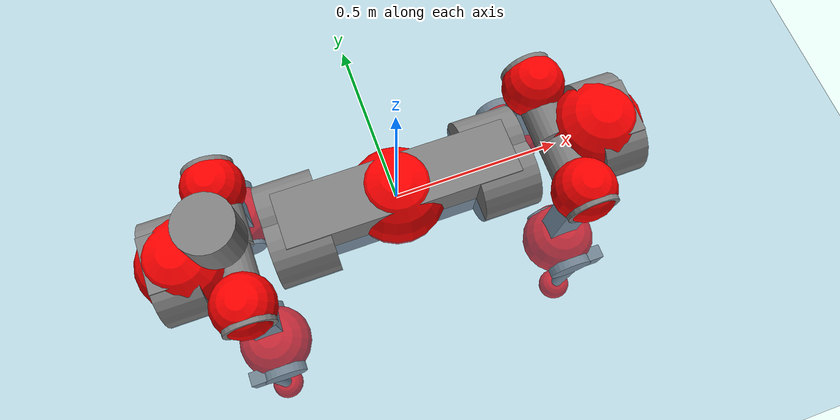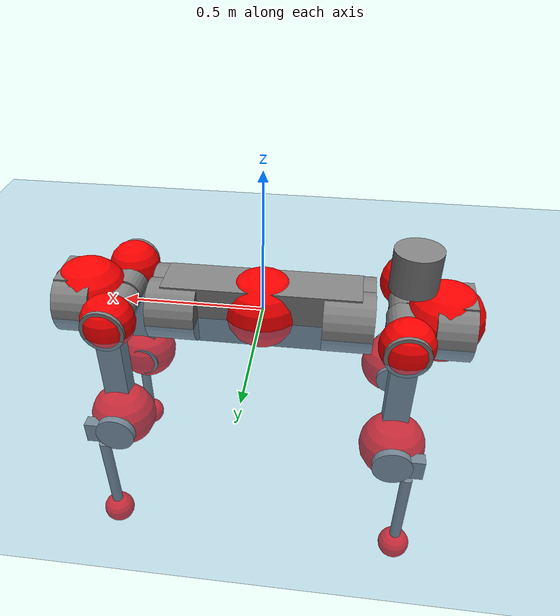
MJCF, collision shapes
<mujoco model="anymal_c">
  <compiler angle="radian" assetdir="assets" balanceinertia="true" inertiafromgeom="false"/>

  <option timestep="0.005" density="1.2" viscosity="2e-05"/>

  <size nkey="1"/>

  <visual>
    <quality shadowsize="8192"/>
    <map shadowclip="0.5"/>
  </visual>

  <default>
    <default class="/">
      <material specular="0" shininess="0.25"/>
      <geom contype="0" conaffinity="0" group="1" solref="-1000 -80"/>
      <site size="0.01 0.005 0.005" group="5"/>
      <general forcelimited="true" forcerange="-80 80" biastype="affine" gainprm="80" biasprm="0 -80 -2"/>
      <default class="anymal_c">
        <joint armature="0.01" damping="0.01" frictionloss="0.1"/>
        <default class="visual">
          <geom type="mesh" group="2"/>
          <default class="visual_zflip"/>
        </default>
        <default class="collision">
          <geom type="cylinder" group="3"/>
          <default class="foot">
            <geom size="0.03 0 0" type="sphere" condim="6" priority="1" friction="0.8 0.02 0.01" solimp="0.015 1 0.03"/>
          </default>
        </default>
      </default>
      <default class="reward_collision_sphere">
        <geom group="5" rgba="1 0 0 1"/>
      </default>
    </default>
  </default>

  <asset>
    <texture type="skybox" colorspace="auto" name="//unnamed_texture_0" builtin="gradient" rgb1="0.95 0.95 0.95" rgb2="0.95 0.95 0.95" width="100" height="600"/>
    <texture type="2d" colorspace="auto" name="texplane" builtin="checker" rgb1="0.345 0.575 0.748" rgb2="0.345 0.575 0.748" markrgb="1 1 1" width="512" height="512"/>
    <texture type="2d" colorspace="linear" name="base" file="base.png"/>
    <texture type="2d" colorspace="linear" name="top_shell" file="top_shell.png"/>
    <texture type="2d" colorspace="linear" name="bottom_shell" file="bottom_shell.png"/>
    <texture type="2d" colorspace="linear" name="remote" file="remote.png"/>
    <texture type="2d" colorspace="linear" name="hatch" file="hatch.png"/>
    <texture type="2d" colorspace="linear" name="handle" file="handle.png"/>
    <texture type="2d" colorspace="linear" name="face" file="face.png"/>
    <texture type="2d" colorspace="linear" name="battery" file="battery.png"/>
    <texture type="2d" colorspace="linear" name="lidar_cage" file="lidar_cage.png"/>
    <texture type="2d" colorspace="linear" name="depth_camera" file="depth_camera.png"/>
    <texture type="2d" colorspace="linear" name="wide_angle_camera" file="wide_angle_camera.png"/>
    <texture type="2d" colorspace="linear" name="lidar" file="lidar.png"/>
    <texture type="2d" colorspace="linear" name="drive" file="drive.png"/>
    <texture type="2d" colorspace="linear" name="hip_l" file="hip_l.png"/>
    <texture type="2d" colorspace="linear" name="shank_l" file="shank_l.png"/>
    <texture type="2d" colorspace="linear" name="foot" file="foot.png"/>
    <texture type="2d" colorspace="linear" name="thigh" file="thigh.png"/>
    <texture type="2d" colorspace="linear" name="shank_r" file="shank_r.png"/>
    <texture type="2d" colorspace="linear" name="hip_r" file="hip_r.png"/>
    <material name="MatPlane" class="/" texture="texplane" texuniform="true" texrepeat="2 2" specular="0.9" shininess="0.5"/>
    <material name="black_plastic" class="/" rgba="0.007 0.007 0.007 1"/>
    <material name="green" class="/" rgba="0.052 0.178 0.033 1"/>
    <material name="red" class="/" rgba="0.178 0.006 0.005 1"/>
    <material name="yellow" class="/" rgba="0.178 0.119 0.006 1"/>
    <material name="lwl" class="/" rgba="0.8 0.8 0.8 1"/>
    <material name="base" class="/" texture="base"/>
    <material name="top_shell" class="/" texture="top_shell"/>
    <material name="bottom_shell" class="/" texture="bottom_shell"/>
    <material name="hip_l" class="/" texture="hip_l"/>
    <material name="thigh" class="/" texture="thigh"/>
    <material name="shank_l" class="/" texture="shank_l"/>
    <material name="foot" class="/" texture="foot"/>
    <material name="hip_r" class="/" texture="hip_r"/>
    <material name="shank" class="/" texture="shank_r"/>
    <material name="hatch" class="/" texture="hatch"/>
    <material name="remote" class="/" texture="remote"/>
    <material name="handle" class="/" texture="handle"/>
    <material name="face" class="/" texture="face"/>
    <material name="depth_camera" class="/" texture="depth_camera"/>
    <material name="wide_angle_camera" class="/" texture="wide_angle_camera"/>
    <material name="battery" class="/" texture="battery"/>
    <material name="lidar_cage" class="/" texture="lidar_cage"/>
    <material name="lidar" class="/" texture="lidar"/>
    <material name="drive" class="/" texture="drive"/>
    <mesh name="base_0" class="/" file="base_0.obj"/>
    <mesh name="base_1" class="/" file="base_1.obj"/>
    <mesh name="base_2" class="/" file="base_2.obj"/>
    <mesh name="base_3" class="/" file="base_3.obj"/>
    <mesh name="base_4" class="/" file="base_4.obj"/>
    <mesh name="base_5" class="/" file="base_5.obj"/>
    <mesh name="top_shell" class="/" file="top_shell.obj"/>
    <mesh name="bottom_shell" class="/" file="bottom_shell.obj"/>
    <mesh name="remote" class="/" file="remote.obj"/>
    <mesh name="handle" class="/" file="handle.obj"/>
    <mesh name="face" class="/" file="face.obj"/>
    <mesh name="wide_angle_camera" class="/" file="wide_angle_camera.obj"/>
    <mesh name="depth_camera" class="/" file="depth_camera.obj"/>
    <mesh name="battery" class="/" file="battery.obj"/>
    <mesh name="lidar_cage" class="/" file="lidar_cage.obj"/>
    <mesh name="lidar" class="/" file="lidar.obj"/>
    <mesh name="drive" class="/" file="drive.obj"/>
    <mesh name="hip_l" class="/" file="hip_l.obj"/>
    <mesh name="thigh" class="/" file="thigh.obj"/>
    <mesh name="shank_l" class="/" file="shank_l.obj"/>
    <mesh name="foot" class="/" file="foot.obj"/>
    <mesh name="hip_r" class="/" file="hip_r.obj"/>
    <mesh name="hatch" class="/" file="hatch.obj"/>
    <mesh name="shank_r" class="/" file="shank_r.obj"/>
  </asset>

  <worldbody>
    <geom name="floor" class="/" size="100 100 0.125" type="plane" group="0" material="MatPlane"/>
    <light name="toplight_shadow" class="/" pos="0 0 5" dir="0.0990148 0.0990148 -0.990148" type="directional" ambient="0.04 0.04 0.04" diffuse="0.55 0.55 0.55" specular="0.12 0.12 0.12"/>
    <light name="toplight_fill" class="/" pos="0 0 5" dir="0.0990148 0.0990148 -0.990148" type="directional" castshadow="false" ambient="0.04 0.04 0.04" diffuse="0.3 0.3 0.3" specular="0.08 0.08 0.08"/>
    <body name="trunk" childclass="anymal_c" pos="0.00135538 -0.000388013 0.00615106" quat="1 -0.000306137 0.000452954 6.73962e-05">
      <inertial pos="0.0106957 0.00885954 0.069105" quat="0.504335 0.493574 0.505716 0.496269" mass="31.2335" diaginertia="2.77011 0.0963219 1.16138"/>
      <joint name="//unnamed_joint_0" type="free" armature="0" damping="0" frictionloss="0"/>
      <geom name="//unnamed_geom_1" class="visual" material="green" mesh="base_0"/>
      <geom name="//unnamed_geom_2" class="visual" material="yellow" mesh="base_1"/>
      <geom name="//unnamed_geom_3" class="visual" material="red" mesh="base_2"/>
      <geom name="//unnamed_geom_4" class="visual" material="black_plastic" mesh="base_3"/>
      <geom name="//unnamed_geom_5" class="visual" material="lwl" mesh="base_4"/>
      <geom name="//unnamed_geom_6" class="visual" material="base" mesh="base_5"/>
      <geom name="trunk_1" class="collision" size="0.341975 0.0825457 0.10613" type="box"/>
      <geom name="trunk_2" class="collision" size="0.10613 0.0854937" pos="0.302161 0.0494389 0" quat="0.707107 0 0.707107 0"/>
      <geom name="trunk_3" class="collision" size="0.10613 0.0854937" pos="-0.302161 0.0494389 0" quat="0.707107 0 0.707107 0"/>
      <geom name="trunk_4" class="collision" size="0.10613 0.0854937" pos="0.302161 -0.0494389 0" quat="0.707107 0 0.707107 0"/>
      <geom name="trunk_5" class="collision" size="0.10613 0.0854937" pos="-0.302161 -0.0494389 0" quat="0.707107 0 0.707107 0"/>
      <geom name="//unnamed_geom_12" class="visual" material="top_shell" mesh="top_shell"/>
      <geom name="//unnamed_geom_13" class="visual" material="bottom_shell" mesh="bottom_shell"/>
      <geom name="//unnamed_geom_14" class="visual" material="remote" mesh="remote"/>
      <geom name="//unnamed_geom_15" class="visual" material="handle" mesh="handle"/>
      <geom name="//unnamed_geom_16" class="visual" pos="0.575842 0 0" quat="1 0 0 0" material="face" mesh="face"/>
      <geom name="trunk_6" class="collision" size="0.0648573 0.0825457 0.10613" pos="0.65225 0 0" type="box"/>
      <geom name="//unnamed_geom_18" class="collision" size="0.10613 0.0648573" pos="0.65225 0.0494389 0" quat="0.707107 0 0.707107 0"/>
      <geom name="//unnamed_geom_19" class="collision" size="0.10613 0.0648573" pos="0.65225 -0.0494389 0" quat="0.707107 0 0.707107 0"/>
      <geom name="//unnamed_geom_20" class="visual" pos="0.641347 0 -0.0425131" quat="0.965926 0 0.258819 0" material="depth_camera" mesh="depth_camera"/>
      <geom name="//unnamed_geom_21" class="visual" pos="0.712682 0 0.0215891" material="wide_angle_camera" mesh="wide_angle_camera"/>
      <geom name="//unnamed_geom_22" class="visual_zflip" pos="-0.575842 0 0" quat="0 0 0 1" material="face" mesh="face"/>
      <geom name="trunk_7" class="collision" size="0.0648573 0.0825457 0.10613" pos="-0.65225 0 0" quat="0 0 0 1" type="box"/>
      <geom name="//unnamed_geom_24" class="collision" size="0.10613 0.0648573" pos="-0.65225 -0.0494389 0" quat="0 -0.707107 0 0.707107"/>
      <geom name="//unnamed_geom_25" class="collision" size="0.10613 0.0648573" pos="-0.65225 0.0494389 0" quat="0 -0.707107 0 0.707107"/>
      <geom name="//unnamed_geom_26" class="visual" pos="-0.641347 0 -0.0425131" quat="0 -0.258819 0 0.965926" material="depth_camera" mesh="depth_camera"/>
      <geom name="//unnamed_geom_27" class="visual_zflip" pos="-0.712682 0 0.0215891" quat="0 0 0 1" material="wide_angle_camera" mesh="wide_angle_camera"/>
      <geom name="//unnamed_geom_28" class="visual" material="battery" mesh="battery"/>
      <geom name="//unnamed_geom_29" class="visual" pos="0 0.0450415 0.0414925" quat="0.683013 -0.183013 0.183013 0.683013" material="depth_camera" mesh="depth_camera"/>
      <geom name="//unnamed_geom_30" class="visual" pos="0 -0.0450415 0.0414925" quat="0.683013 0.183013 0.183013 -0.683013" material="depth_camera" mesh="depth_camera"/>
      <geom name="//unnamed_geom_31" class="visual" pos="-0.505685 0 0.105999" quat="1 0 0 0" material="lidar_cage" mesh="lidar_cage"/>
      <geom name="trunk_8" class="collision" size="0.0825457 0.0707534" pos="-0.505685 0 0.192528"/>
      <geom name="//unnamed_geom_33" class="visual" pos="-0.505685 -0.000268322 0.205075" quat="0.707107 0 0 -0.707107" material="lidar" mesh="lidar"/>
      <geom name="//unnamed_geom_34" class="visual" pos="0.416634 0.0737135 -1.26941e-08" quat="0.258819 0.965926 0 0" material="drive" mesh="drive"/>
      <geom name="//unnamed_geom_35" class="visual" pos="0.416634 -0.0737135 1.26941e-08" quat="0.258819 -0.965926 0 0" material="drive" mesh="drive"/>
      <geom name="//unnamed_geom_36" class="visual" pos="-0.416634 0.0737135 1.26941e-08" quat="0 0 0.965926 -0.258819" material="drive" mesh="drive"/>
      <geom name="//unnamed_geom_37" class="visual" pos="-0.416634 -0.0737135 -1.26941e-08" quat="0 0 -0.965926 -0.258819" material="drive" mesh="drive"/>
      <geom name="//unnamed_geom_38" class="visual" pos="0.161152 0 0.105277" quat="1 0 0 0" material="hatch" mesh="hatch"/>
      <geom name="//unnamed_geom_39" class="reward_collision_sphere" size="0.141507"/>
      <geom name="//unnamed_geom_40" class="reward_collision_sphere" size="0.141507" pos="0.62516 0 0"/>
      <geom name="//unnamed_geom_41" class="reward_collision_sphere" size="0.141507" pos="-0.62516 0 0"/>
      <site name="imu" pos="0.400331 0.00213087 0.0228663" size="0.0117922"/>
      <camera name="track" pos="0 -1.41254 0" quat="0.707107 0.707107 0 0" mode="trackcom"/>
      <camera name="ego_camera" pos="0.62516 0 -0.0576863" quat="-0.5 -0.5 0.5 0.5"/>
      <body name="LF_HIP" pos="0.417614 0.0756613 -0.00149161" quat="0.259417 0.965764 -0.00126724 0.00126268">
        <inertial pos="0.0697153 -0.00699129 -0.0137973" quat="-0.106547 0.711655 -0.123955 0.68325" mass="4.97284" diaginertia="0.0332009 0.000827671 0.019626"/>
        <joint name="LF_HAA" pos="0 0 0" axis="0.999418 0.0221284 -0.0259706" stiffness="0.00437421" range="-0.752129 0.399374" armature="0.00589407" damping="0.0561764" frictionloss="0.11675"/>
        <geom name="//unnamed_geom_42" class="visual" pos="0 -0.000746739 0.000122651" quat="0.258819 -0.965926 0 0" material="hip_l" mesh="hip_l"/>
        <geom name="//unnamed_geom_43" class="visual" pos="0.0832158 -0.0921026 -0.0586185" quat="0.183013 -0.683013 0.683013 0.183013" material="drive" mesh="drive"/>
        <geom name="//unnamed_geom_44" class="collision" size="0.0589612 0.0825457" pos="0.0832157 -0.00844684 -0.0099581" quat="-0.353553 -0.612372 0.612372 -0.353553"/>
        <body name="LF_THIGH" pos="0.0844679 -0.0524426 -0.0591509" quat="0.183364 -0.683161 0.683032 0.182034">
          <inertial pos="0.0399872 -0.00107177 -0.363634" quat="0.993167 -0.000505546 -0.082756 0.0822852" mass="4.80333" diaginertia="0.178182 0.00537656 0.0265189"/>
          <joint name="LF_HFE" pos="0 0 0" axis="0.998537 0.041352 0.034828" range="-3.12775 3.14406" armature="0.0120018" damping="0.0143567" frictionloss="0.16967"/>
          <geom name="//unnamed_geom_45" class="visual" pos="0.0135885 2.14123e-05 0" quat="0.707107 0 0 -0.707107" material="thigh" mesh="thigh"/>
          <geom name="//unnamed_geom_46" class="collision" size="0.0766495 0.0471689" pos="0.0555698 0 0" quat="0.5 0.5 -0.5 -0.5"/>
          <geom name="//unnamed_geom_47" class="collision" size="0.0442209 0.0353767 0.166641" pos="0.0416773 0 -0.203797" quat="0.707107 0 0 -0.707107" type="box"/>
          <geom name="//unnamed_geom_48" class="visual" pos="0.139341 0 -0.411015" quat="1 0 0 0" material="drive" mesh="drive"/>
          <geom name="//unnamed_geom_49" class="collision" size="0.0589612 0.0825457" pos="0.0420941 0 -0.411015" quat="0.707107 0 0.707107 0"/>
          <geom name="//unnamed_geom_50" class="reward_collision_sphere" size="0.0943379" pos="0.0347311 0 0"/>
          <body name="LF_SHANK" pos="0.13158 0.00805068 -0.40011" quat="0.999993 0.00330493 0.00179111 0.000678317">
            <inertial pos="0.00819534 -0.0427305 -0.11555" quat="0.993248 -0.112868 -0.00363086 -0.0265633" mass="0.994872" diaginertia="0.0550953 0.00163422 0.00738781"/>
            <joint name="LF_KFE" pos="0 0 0" axis="0.999942 0.0008978 0.0107438" stiffness="0.00391642" range="-3.02584 3.08891" armature="0.00968238" damping="0.0463478" frictionloss="0.0863117"/>
            <geom name="//unnamed_geom_51" class="visual" pos="0.00443092 0.0236259 0" quat="0.707107 0 0 -0.707107" material="shank_l" mesh="shank_l"/>
            <geom name="LF_kfe_act" class="collision" size="0.0707534 0.0235845" pos="0.0277849 0 0" quat="0.5 0.5 -0.5 -0.5"/>
            <geom name="//unnamed_geom_53" class="collision" size="0.0678042 0.0397988 0.0224053" pos="0.0277849 -0.0406098 0" quat="0.5 0.5 -0.5 -0.5" type="box"/>
            <geom name="//unnamed_geom_54" class="visual" pos="0.0181286 -0.0545027 -0.487406" quat="0.382683 0 0 -0.92388" material="foot" mesh="foot"/>
            <geom name="LF_calf" class="collision" size="0.0206364 0.166568" pos="0.0181296 -0.0621164 -0.243703" quat="0.707107 0 0 -0.707107"/>
            <geom name="LF_foot" class="foot" size="0.0352134" pos="0.0181296 -0.0621164 -0.454957" quat="0.707107 0 0 -0.707107"/>
            <geom name="//unnamed_geom_57" class="reward_collision_sphere" size="0.117922" pos="-0.0694622 0 0"/>
            <geom name="//unnamed_geom_58" class="reward_collision_sphere" size="0.0589612" pos="0.0181296 -0.0621164 -0.454957"/>
            <site name="LF_foot" class="foot" pos="0.0181296 -0.0621164 -0.454957" quat="0.707107 0 0 -0.707107" size="0.0117922"/>
          </body>
        </body>
      </body>
      <body name="RF_HIP" pos="0.422262 -0.0742503 0.00114533" quat="0.259096 -0.965851 -0.000326182 -3.52294e-05">
        <inertial pos="0.0702375 0.00967983 -0.0105116" quat="0.12733 0.680271 0.126901 0.710574" mass="4.29841" diaginertia="0.0294415 0.000761224 0.0191427"/>
        <joint name="RF_HAA" pos="0 0 0" axis="0.999939 -0.00513226 0.00978806" stiffness="0.00685021" range="-0.305939 0.727228" armature="0.0165966" damping="0.00500193" frictionloss="0.170421"/>
        <geom name="//unnamed_geom_59" class="visual" pos="0 0.000746733 0.000122651" quat="0.258819 0.965926 0 0" material="hip_r" mesh="hip_r"/>
        <geom name="//unnamed_geom_60" class="visual" pos="0.0832157 0.0921026 -0.0586185" quat="0.183013 0.683013 0.683013 -0.183013" material="drive" mesh="drive"/>
        <geom name="//unnamed_geom_61" class="collision" size="0.0589612 0.0825457" pos="0.0832157 0.00844684 -0.0099581" quat="-0.353553 0.612372 0.612372 0.353553"/>
        <body name="RF_THIGH" pos="0.0864207 0.041667 -0.0567457" quat="0.183065 0.68296 0.683094 -0.182851">
          <inertial pos="0.04195 0.000704859 -0.355925" quat="0.991668 0.00577084 -0.051999 0.117715" mass="6.15495" diaginertia="0.173143 0.0053305 0.0271813"/>
          <joint name="RF_HFE" pos="0 0 0" axis="0.999377 0.0340038 -0.00942126" stiffness="0.00865044" range="-3.35541 3.02537" armature="0.0117337" damping="0.0419211" frictionloss="0.0474826"/>
          <geom name="//unnamed_geom_62" class="visual" pos="0.0135885 2.14123e-05 0" quat="0.707107 0 0 -0.707107" material="thigh" mesh="thigh"/>
          <geom name="//unnamed_geom_63" class="collision" size="0.0766495 0.0471689" pos="0.0555698 0 0" quat="0.5 0.5 0.5 0.5"/>
          <geom name="//unnamed_geom_64" class="collision" size="0.0442209 0.0353767 0.166641" pos="0.0416773 0 -0.203797" quat="0.707107 0 0 0.707107" type="box"/>
          <geom name="//unnamed_geom_65" class="visual" pos="0.139341 0 -0.411015" quat="1 0 0 0" material="drive" mesh="drive"/>
          <geom name="//unnamed_geom_66" class="collision" size="0.0589612 0.0825457" pos="0.0420941 0 -0.411015" quat="0.707107 0 0.707107 0"/>
          <geom name="//unnamed_geom_67" class="reward_collision_sphere" size="0.0943379" pos="0.0347311 0 0"/>
          <body name="RF_SHANK" pos="0.130671 0.00974147 -0.413584" quat="1 -0.000227103 -0.000705087 -0.000313354">
            <inertial pos="0.00645273 0.041626 -0.125922" quat="0.990504 0.130238 -0.00529677 0.0437362" mass="0.957235" diaginertia="0.0595511 0.00177556 0.00712373"/>
            <joint name="RF_KFE" pos="0 0 0" axis="0.999994 -0.00337486 -9.77651e-05" stiffness="0.00134364" range="-3.04166 3.03094" armature="0.012729" damping="0.0143506" frictionloss="0.178749"/>
            <geom name="//unnamed_geom_68" class="visual" pos="0.00443089 -0.0236258 0" quat="0.707107 0 0 0.707107" material="shank" mesh="shank_r"/>
            <geom name="RF_kfe_act" class="collision" size="0.0707534 0.0235845" pos="0.0277849 0 0" quat="0.5 0.5 0.5 0.5"/>
            <geom name="//unnamed_geom_70" class="collision" size="0.0678042 0.0397988 0.0224053" pos="0.0277849 0.0406098 0" quat="0.5 0.5 0.5 0.5" type="box"/>
            <geom name="//unnamed_geom_71" class="visual" pos="0.0181307 0.0545027 -0.487406" quat="0.382683 0 0 0.92388" material="foot" mesh="foot"/>
            <geom name="RF_calf" class="collision" size="0.0206364 0.166568" pos="0.0181296 0.0621164 -0.243703" quat="0.707107 0 0 0.707107"/>
            <geom name="RF_foot" class="foot" size="0.0511861" pos="0.0181296 0.0621164 -0.454957" quat="0.707107 0 0 0.707107"/>
            <geom name="//unnamed_geom_74" class="reward_collision_sphere" size="0.117922" pos="-0.0694622 0 0"/>
            <geom name="//unnamed_geom_75" class="reward_collision_sphere" size="0.0589612" pos="0.0181296 0.0621164 -0.454957"/>
            <site name="RF_foot" class="foot" pos="0.0181296 0.0621164 -0.454957" quat="0.707107 0 0 0.707107" size="0.0117922"/>
          </body>
        </body>
      </body>
      <body name="LH_HIP" pos="-0.405945 0.0705953 8.45212e-05" quat="-0.000371281 -0.000258989 0.965859 -0.259068">
        <inertial pos="0.0755591 0.00151826 -0.0102206" quat="0.149871 0.688009 0.111263 0.701287" mass="4.59924" diaginertia="0.0342733 0.000829177 0.0251265"/>
        <joint name="LH_HAA" pos="0 0 0" axis="0.999948 -0.00664534 0.00772805" stiffness="0.00860363" range="-0.537945 0.959077" armature="0.0175822" damping="0.029859" frictionloss="0.107661"/>
        <geom name="//unnamed_geom_76" class="visual" pos="0 0.000746733 0.000122651" quat="-0.258819 -0.965926 0 0" material="hip_r" mesh="hip_r"/>
        <geom name="//unnamed_geom_77" class="visual" pos="0.0832157 0.0921026 -0.0586185" quat="0.183013 0.683013 0.683013 -0.183013" material="drive" mesh="drive"/>
        <geom name="//unnamed_geom_78" class="collision" size="0.0589612 0.0825457" pos="0.0832157 0.00844684 -0.0099581" quat="-0.353553 0.612372 0.612372 0.353553"/>
        <body name="LH_THIGH" pos="0.0886426 0.0629496 -0.0599378" quat="0.182968 0.68297 0.682997 -0.183274">
          <inertial pos="0.0425422 -0.00766361 -0.354768" quat="0.99346 -0.00486962 -0.0799396 0.0813854" mass="5.01264" diaginertia="0.156003 0.00554775 0.0254745"/>
          <joint name="LH_HFE" pos="0 0 0" axis="0.999213 0.0119654 0.0378145" range="-3.12581 3.11438" armature="0.0141149" damping="0.0248902" frictionloss="0.10577"/>
          <geom name="//unnamed_geom_79" class="visual" pos="0.0135885 2.14123e-05 0" quat="0.707107 0 0 -0.707107" material="thigh" mesh="thigh"/>
          <geom name="//unnamed_geom_80" class="collision" size="0.0766495 0.0471689" pos="0.0555698 0 0" quat="0.5 0.5 -0.5 -0.5"/>
          <geom name="//unnamed_geom_81" class="collision" size="0.0442209 0.0353767 0.166641" pos="0.0416773 0 -0.203797" quat="0.707107 0 0 -0.707107" type="box"/>
          <geom name="//unnamed_geom_82" class="visual" pos="0.139341 0 -0.411015" quat="1 0 0 0" material="drive" mesh="drive"/>
          <geom name="//unnamed_geom_83" class="collision" size="0.0589612 0.0825457" pos="0.0420941 0 -0.411015" quat="0.707107 0 0.707107 0"/>
          <geom name="//unnamed_geom_84" class="reward_collision_sphere" size="0.0943379" pos="0.0347311 0 0"/>
          <body name="LH_SHANK" pos="0.145068 0.00112085 -0.408674" quat="0.999999 -0.000475529 0.000983584 -0.000736813">
            <inertial pos="0.0078263 0.0438342 -0.117257" quat="0.993546 0.105096 -0.0381731 -0.0190972" mass="0.98353" diaginertia="0.0544269 0.00166743 0.00806239"/>
            <joint name="LH_KFE" pos="0 0 0" axis="0.999406 0.0165536 -0.0302327" stiffness="0.00222538" range="-3.18975 3.12792" armature="0.0156271" damping="0.00255674" frictionloss="0.0846617"/>
            <geom name="//unnamed_geom_85" class="visual" pos="0.00443089 -0.0236258 0" quat="-0.707107 0 0 -0.707107" material="shank" mesh="shank_r"/>
            <geom name="LH_kfe_act" class="collision" size="0.0707534 0.0235845" pos="0.0277849 0 0" quat="0.5 0.5 -0.5 -0.5"/>
            <geom name="//unnamed_geom_87" class="collision" size="0.0678042 0.0397988 0.0224053" pos="0.0277849 0.0406098 0" quat="0.5 0.5 -0.5 -0.5" type="box"/>
            <geom name="//unnamed_geom_88" class="visual" pos="0.0181307 0.0545027 -0.487406" quat="-0.382683 0 0 -0.92388" material="foot" mesh="foot"/>
            <geom name="LH_calf" class="collision" size="0.0206364 0.166568" pos="0.0181296 0.0621164 -0.243703" quat="0.707107 0 0 -0.707107"/>
            <geom name="LH_foot" class="foot" size="0.0174276" pos="0.0181296 0.0621164 -0.454957" quat="0.707107 0 0 -0.707107"/>
            <geom name="//unnamed_geom_91" class="reward_collision_sphere" size="0.117922" pos="-0.0694622 0 0"/>
            <geom name="//unnamed_geom_92" class="reward_collision_sphere" size="0.0589612" pos="0.0181296 0.0621164 -0.454957"/>
            <site name="LH_foot" class="foot" pos="0.0181296 0.0621164 -0.454957" quat="0.707107 0 0 -0.707107" size="0.0117922"/>
          </body>
        </body>
      </body>
      <body name="RH_HIP" pos="-0.415636 -0.0640424 0.00323091" quat="-0.00328048 0.00133439 -0.965884 -0.258952">
        <inertial pos="0.0882598 -0.012479 -0.0203921" quat="-0.129845 0.707765 -0.131641 0.681821" mass="4.7526" diaginertia="0.0322687 0.000909762 0.0243046"/>
        <joint name="RH_HAA" pos="0 0 0" axis="1 -0.000351209 0.000639675" stiffness="0.0176891" range="-0.559028 0.276686" armature="0.0118061" damping="0.0365528" frictionloss="0.123559"/>
        <geom name="//unnamed_geom_93" class="visual" pos="0 -0.000746739 0.000122651" quat="-0.258819 0.965926 0 0" material="hip_l" mesh="hip_l"/>
        <geom name="//unnamed_geom_94" class="visual" pos="0.0832158 -0.0921026 -0.0586185" quat="-0.183013 0.683013 -0.683013 -0.183013" material="drive" mesh="drive"/>
        <geom name="//unnamed_geom_95" class="collision" size="0.0589612 0.0825457" pos="0.0832157 -0.00844684 -0.0099581" quat="0.353553 0.612372 -0.612372 0.353553"/>
        <body name="RH_THIGH" pos="0.0851837 -0.0474862 -0.0699032" quat="-0.182985 0.68315 -0.682904 -0.182935">
          <inertial pos="0.0364644 0.000290799 -0.354131" quat="0.992966 -0.00516605 -0.0827511 0.084517" mass="6.51394" diaginertia="0.197596 0.00614101 0.0297451"/>
          <joint name="RH_HFE" pos="0 0 0" axis="0.999262 -0.00840786 -0.037479" stiffness="0.00943222" range="-3.11017 3.17659" armature="0.013354" damping="0.0144268" frictionloss="0.124343"/>
          <geom name="//unnamed_geom_96" class="visual" pos="0.0135885 2.14123e-05 0" quat="0.707107 0 0 -0.707107" material="thigh" mesh="thigh"/>
          <geom name="//unnamed_geom_97" class="collision" size="0.0766495 0.0471689" pos="0.0555698 0 0" quat="0.5 0.5 0.5 0.5"/>
          <geom name="//unnamed_geom_98" class="collision" size="0.0442209 0.0353767 0.166641" pos="0.0416773 0 -0.203797" quat="0.707107 0 0 0.707107" type="box"/>
          <geom name="//unnamed_geom_99" class="visual" pos="0.139341 0 -0.411015" quat="1 0 0 0" material="drive" mesh="drive"/>
          <geom name="//unnamed_geom_100" class="collision" size="0.0589612 0.0825457" pos="0.0420941 0 -0.411015" quat="0.707107 0 0.707107 0"/>
          <geom name="//unnamed_geom_101" class="reward_collision_sphere" size="0.0943379" pos="0.0347311 0 0"/>
          <body name="RH_SHANK" pos="0.148442 0.000244586 -0.410665" quat="0.999998 0.000410525 0.00158485 -0.0010027">
            <inertial pos="0.010193 -0.0437458 -0.114697" quat="0.992827 -0.103503 0.0239532 -0.0548422" mass="0.995091" diaginertia="0.0566015 0.00149059 0.00726694"/>
            <joint name="RH_KFE" pos="0 0 0" axis="0.999587 -0.00681633 0.0279171" range="-3.13171 3.17077" armature="0.0179583" damping="0.00453606" frictionloss="0.115735"/>
            <geom name="//unnamed_geom_102" class="visual" pos="0.00443092 0.0236259 0" quat="0.707107 0 0 -0.707107" material="shank_l" mesh="shank_l"/>
            <geom name="RH_kfe_act" class="collision" size="0.0707534 0.0235845" pos="0.0277849 0 0" quat="0.5 0.5 0.5 0.5"/>
            <geom name="//unnamed_geom_104" class="collision" size="0.0678042 0.0397988 0.0224053" pos="0.0277849 -0.0406098 0" quat="0.5 0.5 0.5 0.5" type="box"/>
            <geom name="//unnamed_geom_105" class="visual" pos="0.0181286 -0.0545027 -0.487406" quat="0.382683 0 0 -0.92388" material="foot" mesh="foot"/>
            <geom name="RH_calf" class="collision" size="0.0206364 0.166568" pos="0.0181296 -0.0621164 -0.243703" quat="0.707107 0 0 0.707107"/>
            <geom name="RH_foot" class="foot" size="0.0428706" pos="0.0181296 -0.0621164 -0.454957" quat="0.707107 0 0 0.707107"/>
            <geom name="//unnamed_geom_108" class="reward_collision_sphere" size="0.117922" pos="-0.0694622 0 0"/>
            <geom name="//unnamed_geom_109" class="reward_collision_sphere" size="0.0589612" pos="0.0181296 -0.0621164 -0.454957"/>
            <site name="RH_foot" class="foot" pos="0.0181296 -0.0621164 -0.454957" quat="0.707107 0 0 0.707107" size="0.0117922"/>
          </body>
        </body>
      </body>
    </body>
  </worldbody>

  <contact>
    <pair class="/" geom1="floor" geom2="LF_foot" name="//unnamed_contact_0"/>
    <pair class="/" geom1="floor" geom2="RF_foot" name="//unnamed_contact_1"/>
    <pair class="/" geom1="floor" geom2="LH_foot" name="//unnamed_contact_2"/>
    <pair class="/" geom1="floor" geom2="RH_foot" name="//unnamed_contact_3"/>
  </contact>

  <actuator>
    <general name="LF_HAA" class="/" joint="LF_HAA" forcerange="-93.1671 93.1671" gainprm="63.1426" biasprm="0 -63.1426 -2.5286"/>
    <general name="LF_HFE" class="/" joint="LF_HFE" forcerange="-110.78 110.78" gainprm="63.1426" biasprm="0 -63.1426 -2.5286"/>
    <general name="LF_KFE" class="/" joint="LF_KFE" forcerange="-99.6516 99.6516" gainprm="63.1426" biasprm="0 -63.1426 -2.5286"/>
    <general name="RF_HAA" class="/" joint="RF_HAA" forcerange="-112.792 112.792" gainprm="63.1426" biasprm="0 -63.1426 -2.5286"/>
    <general name="RF_HFE" class="/" joint="RF_HFE" forcerange="-82.8079 82.8079" gainprm="63.1426" biasprm="0 -63.1426 -2.5286"/>
    <general name="RF_KFE" class="/" joint="RF_KFE" forcerange="-124.75 124.75" gainprm="63.1426" biasprm="0 -63.1426 -2.5286"/>
    <general name="LH_HAA" class="/" joint="LH_HAA" forcerange="-96.7926 96.7926" gainprm="63.1426" biasprm="0 -63.1426 -2.5286"/>
    <general name="LH_HFE" class="/" joint="LH_HFE" forcerange="-125.564 125.564" gainprm="63.1426" biasprm="0 -63.1426 -2.5286"/>
    <general name="LH_KFE" class="/" joint="LH_KFE" forcerange="-98.6336 98.6336" gainprm="63.1426" biasprm="0 -63.1426 -2.5286"/>
    <general name="RH_HAA" class="/" joint="RH_HAA" forcerange="-100.563 100.563" gainprm="63.1426" biasprm="0 -63.1426 -2.5286"/>
    <general name="RH_HFE" class="/" joint="RH_HFE" forcerange="-130.45 130.45" gainprm="63.1426" biasprm="0 -63.1426 -2.5286"/>
    <general name="RH_KFE" class="/" joint="RH_KFE" forcerange="-66.2439 66.2439" gainprm="63.1426" biasprm="0 -63.1426 -2.5286"/>
  </actuator>

  <sensor>
    <gyro site="imu" name="imu_angular_velocity"/>
    <velocimeter site="imu" name="imu_linear_velocity"/>
    <framelinvel objtype="site" objname="LF_foot" name="LF_foot_global_linear_velocity"/>
    <framelinvel objtype="site" objname="RF_foot" name="RF_foot_global_linear_velocity"/>
    <framelinvel objtype="site" objname="LH_foot" name="LH_foot_global_linear_velocity"/>
    <framelinvel objtype="site" objname="RH_foot" name="RH_foot_global_linear_velocity"/>
  </sensor>

  <keyframe>
    <key name="home" qpos="0 0 0.55 1 0 0 0 0 0.4 -0.8 0 -0.4 0.8 0 -0.4 0.8 0 0.4 -0.8"/>
  </keyframe>
</mujoco>
